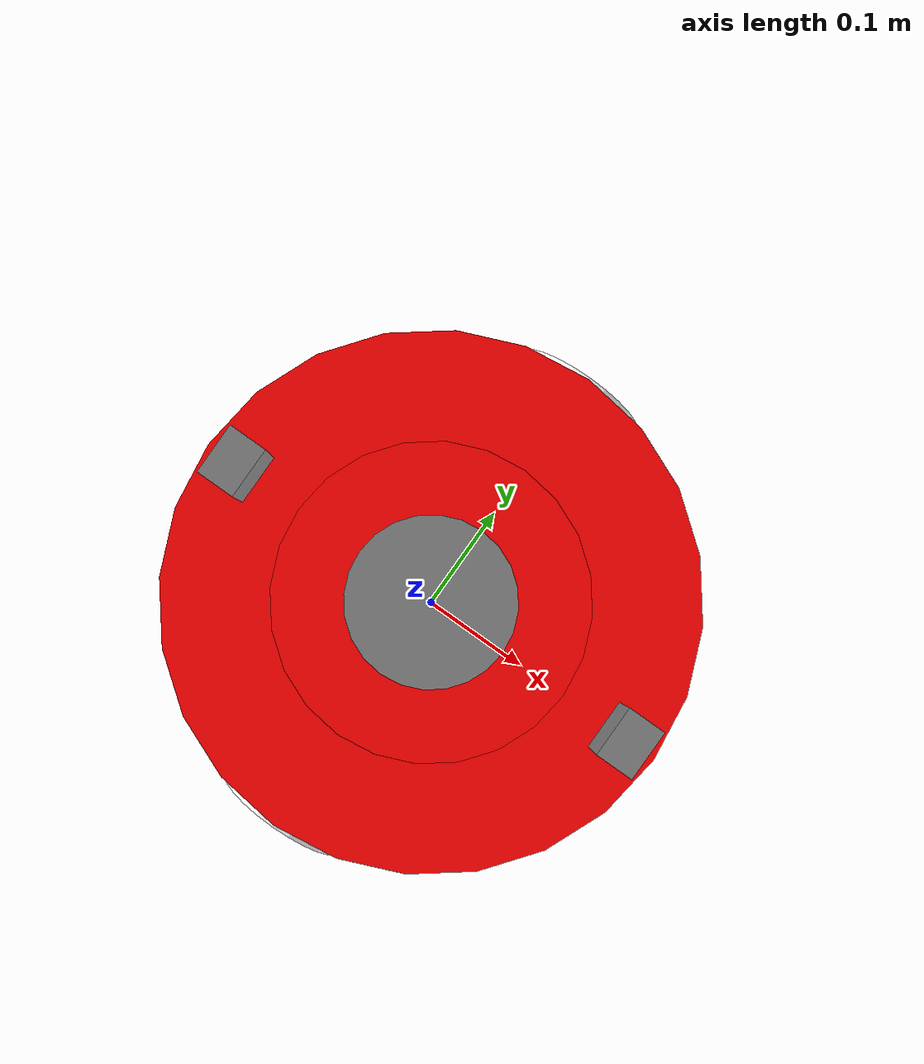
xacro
<?xml version="1.0" ?>
<robot name="mbot" xmlns:xacro="http://www.ros.org/wiki/xacro">

  <xacro:property name="M_PI" value="3.1415926" />

  <xacro:property name="wheel_joint_x" value="0" />
  <xacro:property name="wheel_joint_y" value="0.19" />
  <xacro:property name="wheel_joint_z" value="0.05" />

  <xacro:property name="wheel_mass"   value="0.2" />
  <xacro:property name="wheel_length" value="0.06" />
  <xacro:property name="wheel_radius" value="0.06" />

  <xacro:property name="caster_joint_x" value="0.18" />
  <xacro:property name="caster_joint_y" value="0" />
  <xacro:property name="caster_joint_z" value="0.095" />

  <xacro:property name="caster_mass"   value="0.1" />
  <xacro:property name="caster_radius" value="0.015" />

  <xacro:property name="base_mass"   value="1" />
  <xacro:property name="base_length" value="0.16" />
  <xacro:property name="base_radius" value="0.2" />

  <xacro:property name="stage_mass"   value="0.5" />
  <xacro:property name="stage_length" value="0.12" />
  <xacro:property name="stage_radius" value="0.1" />

  <xacro:property name="camera_joint_x" value="0.17" />
  <xacro:property name="camera_joint_y" value="0" />
  <xacro:property name="camera_joint_z" value="0.1" />

  <xacro:property name="kinect_joint_x" value="0.15" />
  <xacro:property name="kinect_joint_y" value="0" />
  <xacro:property name="kinect_joint_z" value="0.11" />

  <xacro:property name="laser_joint_x" value="0" />
  <xacro:property name="laser_joint_y" value="0" />
  <xacro:property name="laser_joint_z" value="0.085" />

  <material name="white">
    <color rgba="1 1 1 0.9"/>
  </material>
  <material name="red">
    <color rgba="1 0 0 1"/>
  </material>

  <material name="grey">
    <color rgba="0.5 0.5 0.5 1"/>
  </material>

  <xacro:macro name="cylinder_inertial_matrix" params="m r h">
      <inertial>
          <mass value="${m}" />
          <inertia ixx="${m*(3*r*r+h*h)/12}" ixy = "0" ixz = "0"
              iyy="${m*(3*r*r+h*h)/12}" iyz = "0"
              izz="${m*r*r/2}" />
      </inertial>
  </xacro:macro>

  <!-- Macro for inertia matrix -->
  <xacro:macro name="sphere_inertial_matrix" params="m r">
      <inertial>
          <mass value="${m}" />
          <inertia ixx="${2*m*r*r/5}" ixy="0" ixz="0"
              iyy="${2*m*r*r/5}" iyz="0"
              izz="${2*m*r*r/5}" />
      </inertial>
  </xacro:macro>

  <xacro:macro name="base_stage">
    <link name="base_footprint">
        <visual>
            <origin xyz="0 0 0" rpy="0 0 0" />
            <geometry>
                <box size="0.001 0.001 0.001" />
            </geometry>
        </visual>
    </link>
    <gazebo reference="base_footprint">
        <turnGravityOff>false</turnGravityOff>
    </gazebo>

    <joint name="base_link_joint" type="fixed">
        <origin xyz="0 0 ${base_length/2 + caster_radius*2}" rpy="0 0 0" />
        <parent link="base_footprint"/>
        <child link="base_link" />
    </joint>

    <link name="base_link">
      <visual>
        <origin xyz="0 0 0" rpy="0 0 0"/>
        <geometry>
          <cylinder length="${base_length}" radius="${base_radius}"/>
        </geometry>
        <material name="red" />
      </visual>
      <collision>
          <origin xyz=" 0 0 0" rpy="0 0 0" />
          <geometry>
              <cylinder length="${base_length}" radius="${base_radius}"/>
          </geometry>
      </collision>
      <xacro:cylinder_inertial_matrix  m="${base_mass}" r="${base_radius}" h="${base_length}" />
    </link>

    <gazebo reference="base_link">
        <material>Gazebo/Red</material>
    </gazebo>

    <joint name="stage_joint" type="fixed">
      <origin xyz="0 0 ${(base_length + stage_length)/2}" rpy="0 0 0" />
      <parent link="base_link"/>
      <child link="stage_link" />
    </joint>

    <link name="stage_link">
      <visual>
        <origin xyz="0 0 0" rpy="0 0 0"/>
        <geometry>
          <cylinder length="${stage_length}" radius="${stage_radius}"/>
        </geometry>
        <material name="red" />
      </visual>
      <collision>
          <origin xyz=" 0 0 0" rpy="0 0 0" />
          <geometry>
              <cylinder length="${stage_length}" radius="${stage_radius}"/>
          </geometry>
      </collision>
      <xacro:cylinder_inertial_matrix  m="${stage_mass}" r="${stage_radius}" h="${stage_length}" />
    </link>

    <gazebo reference="stage_link">
        <material>Gazebo/Red</material>
    </gazebo>

  </xacro:macro>

  <xacro:macro name="wheel" params="prefix reflect">
    <joint name="${prefix}_wheel_joint" type="continuous">
      <origin xyz="${wheel_joint_x} ${reflect*wheel_joint_y} ${-wheel_joint_z}" rpy="0 0 0" />
      <parent link="base_link" />
      <child link="${prefix}_wheel_link" />
      <axis xyz="0 1 0" />
    </joint>

    <link name="${prefix}_wheel_link">
      <visual>
        <origin xyz="0 0 0" rpy="${M_PI/2} 0 0"/>
        <geometry>
          <cylinder length="${wheel_length}" radius="${wheel_radius}"/>
        </geometry>
        <material name="white" />
      </visual>
      <collision>
          <origin xyz="0 0 0" rpy="${M_PI/2} 0 0" />
          <geometry>
              <cylinder length="${wheel_length}" radius="${wheel_radius}"/>
          </geometry>
      </collision>
      <xacro:cylinder_inertial_matrix  m="${wheel_mass}" r="${wheel_radius}" h="${wheel_length}" />
    </link>

    <gazebo reference="${prefix}_wheel_link">
        <material>Gazebo/White</material>
    </gazebo>

    <!-- Transmission is important to link the joints and the controller -->
    <transmission name="${prefix}_wheel_joint_trans">
        <type>transmission_interface/SimpleTransmission</type>
        <joint name="${prefix}_wheel_joint" >
            <hardwareInterface>hardware_interface/VelocityJointInterface</hardwareInterface>
        </joint>
        <actuator name="${prefix}_wheel_joint_motor">
            <hardwareInterface>hardware_interface/VelocityJointInterface</hardwareInterface>
            <mechanicalReduction>1</mechanicalReduction>
        </actuator>
    </transmission>

  </xacro:macro>

  <xacro:macro name="caster" params="prefix reflect">
    <joint name="${prefix}_caster_joint" type="continuous">
      <origin xyz="${reflect*caster_joint_x} ${caster_joint_y} ${-caster_joint_z}" rpy="0 0 0" />
      <parent link="base_link"/>
      <child link="${prefix}_caster_link" />
      <axis xyz="0 1 0" />
    </joint>

    <link name="${prefix}_caster_link">
      <visual>
        <origin xyz="0 0 0" rpy="0 0 0" />
        <geometry>
          <sphere radius="${caster_radius}" />
        </geometry>
        <material name="white" />
      </visual>
      <collision>
          <origin xyz="0 0 0" rpy="0 0 0"/>
          <geometry>
              <sphere radius="${caster_radius}" />
          </geometry>
      </collision>
      <xacro:sphere_inertial_matrix  m="${caster_mass}" r="${caster_radius}" />
    </link>

    <gazebo reference="${prefix}_caster_link">
        <material>Gazebo/White</material>
    </gazebo>

  </xacro:macro>

  <xacro:macro name="robot_base">
    <xacro:base_stage />

    <xacro:wheel prefix="left"  reflect="1"/>
    <xacro:wheel prefix="right"  reflect="-1"/>

    <!-- TODO: caster can not work , so delete it ! -->

    <!-- controller -->
    <gazebo>
        <plugin name="differential_drive_controller"
                filename="libgazebo_ros_diff_drive.so">
            <ros_debug_level>Debug</ros_debug_level>
            <robot_namespace>/</robot_namespace>
            <publish_tf>1</publish_tf>
            <publish_wheel_joint_state>true</publish_wheel_joint_state>
            <always_on>true</always_on>
            <update_rate>100.0</update_rate>
            <legacy_mode>true</legacy_mode>
            <left_joint>left_wheel_joint</left_joint>
            <right_joint>right_wheel_joint</right_joint>
            <wheel_separation>${wheel_joint_y*2}</wheel_separation>
            <wheel_diameter>${2*wheel_radius}</wheel_diameter>
            <broadcast_TF>1</broadcast_TF>
            <max_wheel_torque>30</max_wheel_torque>
            <max_wheel_acceleration>1.8</max_wheel_acceleration>
            <command_topic>cmd_vel</command_topic>
            <odometry_frame>odom</odometry_frame>
            <odometry_topic>odom</odometry_topic>
            <robot_base_frame>base_footprint</robot_base_frame>
            <publish_odom>true</publish_odom>
            <publish_odom_tf>true</publish_odom_tf>
            <publish_wheel_tf>true</publish_wheel_tf>
        </plugin>
    </gazebo>

  </xacro:macro>

  <xacro:robot_base />

  <xacro:include filename="$(find gazebo_mbot_go_maze)/urdf/sensor/camera.xacro" />
  <xacro:usb_camera prefix="front"  reflect="1" turn="0" />
  <xacro:usb_camera prefix="back"  reflect="-1" turn="${M_PI}"/>

  <xacro:include filename="$(find gazebo_mbot_go_maze)/urdf/sensor/laser.xacro" />
  <xacro:laser joint_x="${laser_joint_x}" joint_y="${laser_joint_y}" joint_z="${laser_joint_z}"/>

</robot>

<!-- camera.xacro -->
<robot name="camera" xmlns:xacro="http://www.ros.org/wiki/xacro">

  <xacro:macro name="usb_camera" params="prefix reflect turn">
    <joint name="${prefix}_camera_joint" type="fixed">
      <origin xyz="${reflect*camera_joint_x} ${camera_joint_y} ${camera_joint_z}" rpy="0 0 ${turn}" />
      <parent link="base_link"/>
      <child link="${prefix}_camera_link" />
    </joint>

    <link name="${prefix}_camera_link">
      <visual>
        <origin xyz="0 0 0" rpy="0 0 0" />
        <geometry>
          <box size="0.03 0.04 0.04" />
        </geometry>
        <material name="grey" />
      </visual>
      <collision>
          <origin xyz="0.0 0.0 0.0" rpy="0 0 0" />
          <geometry>
              <box size="0.03 0.04 0.04" />
          </geometry>
      </collision>

      <inertial>
          <mass value="0.1" />
          <origin xyz="0 0 0" />
          <inertia ixx="0.01" ixy="0.0" ixz="0.0"
                    iyy="0.01" iyz="0.0"
                    izz="0.01" />
      </inertial>

    </link>

    <gazebo reference="${prefix}_camera_link">
        <material>Gazebo/Grey</material>
    </gazebo>

    <gazebo reference="${prefix}_camera_link">
        <sensor type="camera" name="camera_node">
            <update_rate>30.0</update_rate>
            <camera name="head">
                <horizontal_fov>1.3962634</horizontal_fov>
                <image>
                    <width>1280</width>
                    <height>720</height>
                    <format>R8G8B8</format>
                </image>
                <clip>
                    <near>0.02</near>
                    <far>300</far>
                </clip>
                <noise>
                    <type>gaussian</type>
                    <mean>0.0</mean>
                    <stddev>0.007</stddev>
                </noise>
            </camera>
            <plugin name="gazebo_camera_${prefix}" filename="libgazebo_ros_camera.so">
                <always_on>true</always_on>
                <update_rate>0.0</update_rate>
                <camera_name>/camera_${prefix}</camera_name>
                <image_topic_name>image_raw</image_topic_name>
                <camera_info_topic_name>camera_info</camera_info_topic_name>
                <frame_name>${prefix}_camera_link</frame_name>
                <hack_baseline>0.07</hack_baseline>
                <distortionK1>0.0</distortionK1>
                <distortionK2>0.0</distortionK2>
                <distortionK3>0.0</distortionK3>
                <distortionT1>0.0</distortionT1>
                <distortionT2>0.0</distortionT2>
            </plugin>
        </sensor>
    </gazebo>

  </xacro:macro>

</robot>

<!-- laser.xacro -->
<robot name="laser" xmlns:xacro="http://www.ros.org/wiki/xacro">

  <xacro:macro name="laser" params="joint_x joint_y joint_z">
    <joint name="laser_joint" type="fixed">
      <origin xyz="${joint_x} ${joint_y} ${joint_z}" rpy="0 0 0" />
      <parent link="stage_link"/>
      <child link="laser_link" />
    </joint>

    <link name="laser_link">
      <visual>
        <origin xyz="0 0 0" rpy="0 0 0" />
        <geometry>
          <cylinder length="0.05" radius="0.05"/>
        </geometry>
        <material name="grey"/>
      </visual>
      <collision>
          <origin xyz="0.0 0.0 0.0" rpy="0 0 0" />
          <geometry>
              <cylinder length="0.05" radius="0.05"/>
          </geometry>
      </collision>
      <inertial>
          <mass value="0.2" />
          <origin xyz="0 0 0" />
          <inertia ixx="0.02" ixy="0.0" ixz="0.0"
                    iyy="0.02" iyz="0.0"
                    izz="0.02" />
      </inertial>
    </link>

    <gazebo reference="laser_link">
        <material>Gazebo/Grey</material>
    </gazebo>

    <gazebo reference="laser_link">
        <sensor type="ray" name="rplidar">
            <pose>0 0 0 0 0 0</pose>
            <visualize>false</visualize>
            <update_rate>5.5</update_rate>
            <ray>
                <scan>
                  <horizontal>
                    <samples>360</samples>
                    <resolution>1</resolution>
                    <min_angle>-3</min_angle>
                    <max_angle>3</max_angle>
                  </horizontal>
                </scan>
                <range>
                  <min>0.10</min>
                  <max>6.0</max>
                  <resolution>0.01</resolution>
                </range>
                <noise>
                  <type>gaussian</type>
                  <mean>0.0</mean>
                  <stddev>0.01</stddev>
                </noise>
            </ray>
            <plugin name="gazebo_rplidar" filename="libgazebo_ros_ray_sensor.so">
              <ros>
                <namespace>/</namespace>
                <remapping>~/out:=scan</remapping>
              </ros>
              <output_type>sensor_msgs/LaserScan</output_type>
            </plugin>
        </sensor>
    </gazebo>

  </xacro:macro>
</robot>
